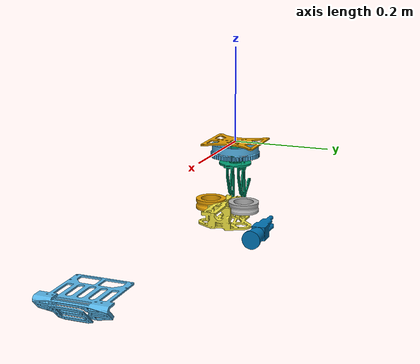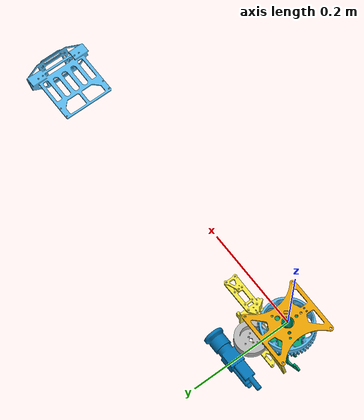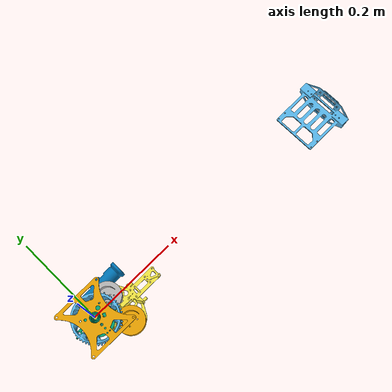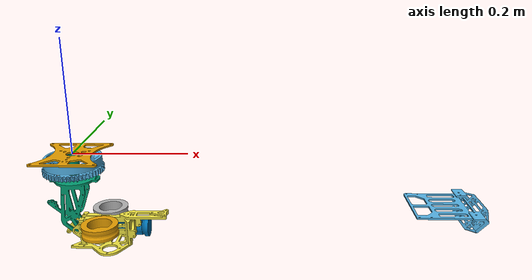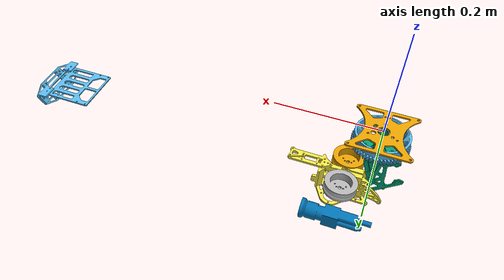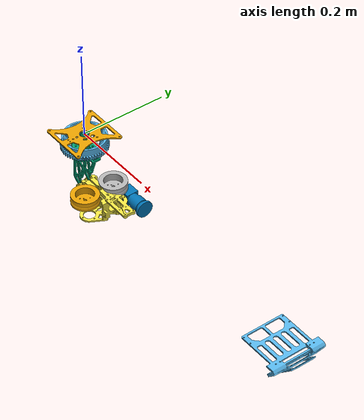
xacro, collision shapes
<?xml version="1.0"?>
<robot xmlns:xacro="http://www.ros.org/wiki/xacro" name="drone">

    <xacro:arg name="load_chassis" default="true"/>
    <xacro:arg name="load_gimbal" default="true"/>
    <xacro:arg name="load_shooter" default="true"/>
    <xacro:arg name="camera_link" default="vision_camera_link"/>
    <xacro:arg name="camera_optical_frame" default="camera_optical_frame"/>
    <xacro:arg name="use_simulation" default="true"/>

    <xacro:if value="$(arg load_chassis)">
        <xacro:include filename="$(find rm2_description)/urdf/drone/chassis.urdf.xacro"/>
        <xacro:include filename="$(find rm2_description)/urdf/drone/camera.urdf.xacro"/>

        <xacro:if value="$(arg load_gimbal)">
            <xacro:include filename="$(find rm2_description)/urdf/drone/gimbal.urdf.xacro"/>
            <xacro:include filename="$(find rm2_description)/urdf/drone/gimbal.transmission.urdf.xacro"/>
            <xacro:include filename="$(find rm2_description)/urdf/common/camera.urdf.xacro"/>
            <xacro:include filename="$(find rm2_description)/urdf/common/imu.urdf.xacro"/>
            <xacro:camera_sensor xyz="0.048161 0.074606 -0.039265" rpy="0 0 0" frame_id="$(arg camera_link)"
                                 parent="pitch"
                                 camera_type="hk_camera"
                                 camera_sim="$(arg use_simulation)"/>
            <xacro:camera_optical_frame xyz="0.048161 0.074606 -0.039265"
                                        rpy="1.6125345 0.00 1.5936112"
                                        frame_id="$(arg camera_optical_frame)"
                                        parent="pitch"
                                        camera_sim="false"/>
            <xacro:IMU connected_to="pitch" imu_name="gimbal_imu" xyz="0.05822 0.0 -0.042111" rpy="${pi} 0 ${pi/2}"/>
            <xacro:if value="$(arg load_shooter)">
                <xacro:include filename="$(find rm2_description)/urdf/drone/shooter.urdf.xacro"/>
                <xacro:include filename="$(find rm2_description)/urdf/drone/shooter.transmission.urdf.xacro"/>
            </xacro:if>
        </xacro:if>
    </xacro:if>

    <xacro:if value="$(arg use_simulation)">
        <gazebo>
            <plugin name="rm_ros_control" filename="librm_robot_hw_sim.so">
                <robotNamespace>/</robotNamespace>
                <robotSimType>rm_gazebo/RmRobotHWSim</robotSimType>
            </plugin>
        </gazebo>
    </xacro:if>

</robot>

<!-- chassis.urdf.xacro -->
<robot>

    <!-- https://upload.wikimedia.org/wikipedia/commons/5/52/Wheelbase_and_Track.png -->

    <link name="base_link">
        <inertial>
            <mass value="7.933506"/>
            <origin xyz="-0.004794 0.00172 0.037912"/>
            <inertia ixx="1.054" ixy="-1.98e-04" ixz="3.722e-03" iyy="1.041"
                     iyz="1.046e-04" izz="1.9"/>
        </inertial>
        <visual>
            <origin xyz="0 0 0" rpy="0 0 0"/>
            <geometry>
                <mesh filename="package://rm2_description/meshes/drone/base_link.stl" scale="1 1 1"/>
            </geometry>
        </visual>
        <collision>
            <origin xyz="0 0 0" rpy="0 0 0"/>
            <geometry>
                <mesh filename="package://rm2_description/meshes/drone/base_link.stl" scale="1 1 1"/>
            </geometry>
        </collision>
    </link>

</robot>

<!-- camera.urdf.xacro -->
<robot>

    <!-- https://upload.wikimedia.org/wikipedia/commons/5/52/Wheelbase_and_Track.png -->

    <link name="locate_camera">
        <inertial>
            <mass value="0.054995"/>
            <origin xyz="0.00625 0.0 0.0"/>
            <inertia ixx="5.4086249e-5" ixy="0.0" ixz="0.0" iyy="5.42716280e-5"
                     iyz="0.0" izz="5.5432970e-6"/>
        </inertial>
        <visual>
            <origin xyz="0 0 0" rpy="0 0 0"/>
            <geometry>
                <mesh filename="package://rm2_description/meshes/drone/camera.stl" scale="0.001 0.001 0.001"/>
            </geometry>
        </visual>
        <collision>
            <origin xyz="0 0 0" rpy="0 0 0"/>
            <geometry>
                <mesh filename="package://rm2_description/meshes/drone/camera.stl" scale="0.001 0.001 0.001"/>
            </geometry>
        </collision>
    </link>

    <joint name="locate_camera_joint" type="fixed">
        <origin xyz="0.45 0 -0.0175" rpy="0 0 0"/>
        <parent link="base_link"/>
        <child link="locate_camera"/>
    </joint>

</robot>

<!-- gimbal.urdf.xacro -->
<robot xmlns:xacro="http://www.ros.org/wiki/xacro">

    <xacro:property name="threshold" value="0.1"/>
    <xacro:property name="pitch_lower_limit" value="-0.467"/>
    <xacro:property name="pitch_upper_limit" value="0.307"/>
    <xacro:property name="yaw_lower_limit" value="-1.052"/>
    <xacro:property name="yaw_upper_limit" value="1.055"/>

    <link name="yaw">
        <inertial>
            <mass value="0.948175"/>
            <origin xyz="-0.025514 -0.005502 -0.047684"/>
            <inertia ixx="1.020e-03" ixy="-1.701e-04" ixz="-5.731e-04" iyy="1.708e-03"
                     iyz="-1.106e-04" izz="1.251e-03"/>
        </inertial>
        <visual>
            <origin xyz="0 0 0" rpy="0 0 0"/>
            <geometry>
                <mesh filename="package://rm2_description/meshes/drone/yaw.stl" scale="1 1 1"/>
            </geometry>
        </visual>
        <collision>
            <origin xyz="0 0 0" rpy="0 0 0"/>
            <geometry>
                <mesh filename="package://rm2_description/meshes/drone/yaw.stl" scale="1 1 1"/>
            </geometry>
        </collision>
    </link>

    <joint name="yaw_joint" type="revolute">
        <origin xyz="0 0 -0.003"
                rpy="0 0 0"/>
        <dynamics damping="0.0" friction="0.1"/>
        <limit effort="1.2" velocity="31" lower="${yaw_lower_limit}" upper="${yaw_upper_limit}"/>
        <safety_controller k_position="100" k_velocity="0.1"
                           soft_lower_limit="${yaw_lower_limit+threshold}"
                           soft_upper_limit="${yaw_upper_limit-threshold}"/>
        <parent link="base_link"/>
        <child link="yaw"/>
        <axis xyz="0 0 1"/>
    </joint>

    <link name="pitch">
        <inertial>
            <mass value="1.390125"/>
            <origin xyz="0.060522 0.001897 -0.014107"/>
            <inertia ixx="3.385e-03" ixy="3.000e-04" ixz="-2.002e-03" iyy="8.459e-03"
                     iyz="7.6495077e-05" izz="6.754e-03"/>
        </inertial>
        <visual>
            <origin xyz="0 0 0" rpy="0 0 0"/>
            <geometry>
                <mesh filename="package://rm2_description/meshes/drone/pitch.stl" scale="1 1 1"/>
            </geometry>
        </visual>
        <collision>
            <origin xyz="0 0 0" rpy="0 0 0"/>
            <geometry>
                <mesh filename="package://rm2_description/meshes/drone/pitch.stl" scale="1 1 1"/>
            </geometry>
        </collision>
    </link>

    <joint name="pitch_joint" type="revolute">
        <origin xyz="0 0 -0.134" rpy="0 0 0"/>
        <dynamics damping="0.0" friction="0.1"/>
        <limit effort="3.0" velocity="86" lower="${pitch_lower_limit}" upper="${pitch_upper_limit}"/>
        <safety_controller k_position="100" k_velocity="0.1"
                           soft_lower_limit="${pitch_lower_limit+threshold}"
                           soft_upper_limit="${pitch_upper_limit-threshold}"/>
        <parent link="yaw"/>
        <child link="pitch"/>
        <axis xyz="0 1 0 "/>
    </joint>

</robot>

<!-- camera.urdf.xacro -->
<robot xmlns:xacro="http://www.ros.org/wiki/xacro">

    <xacro:macro name="camera_sensor" params="xyz rpy frame_id parent camera_type camera_sim">
        <joint name="${frame_id}_joint" type="fixed">
            <axis xyz="0 1 0"/>
            <origin xyz="${xyz}" rpy="${rpy}"/>
            <parent link="${parent}"/>
            <child link="${frame_id}"/>
        </joint>

        <link name="${frame_id}">
            <visual>
                <origin xyz="0 0 0" rpy="0 0 0"/>
                <geometry>
                    <mesh filename="package://rm2_description/meshes/common/${camera_type}.stl" scale="1 1 1"/>
                </geometry>
            </visual>
            <inertial>
                <mass value="0.17671"/>
                <origin xyz="0.022 0.0 0.0"/>
                <inertia ixx="2.129e-5" ixy="7.329e-8" ixz="-1.11e-7" iyy="2.198e-4" iyz="-8.04e-7" izz="2.197e-4"/>
            </inertial>
            <collision>
                <origin xyz="0 0 0" rpy="0 0 0"/>
                <geometry>
                    <mesh filename="package://rm2_description/meshes/common/${camera_type}.stl" scale="1 1 1"/>
                </geometry>
            </collision>
        </link>
    </xacro:macro>

    <xacro:macro name="camera_optical_frame" params="xyz rpy frame_id parent camera_sim">
        <joint name="${frame_id}_joint" type="fixed">
            <origin xyz="${xyz}" rpy="${rpy}"/>
            <parent link="${parent}"/>
            <child link="${frame_id}"/>
        </joint>
        <link name="${frame_id}">
            <inertial>
                <mass value="0.001"/>
                <origin xyz="0.0 0.0 0.0"/>
                <inertia ixx="2.129e-9" ixy="7.329e-9" ixz="-1.11e-9" iyy="2.198e-9" iyz="-8.04e-9" izz="2.197e-9"/>
            </inertial>
        </link>

        <xacro:if value="${camera_sim}">
            <gazebo reference="camera_link">
                <sensor type="camera" name="camera">
                    <update_rate>100.0</update_rate>
                    <camera name="head">
                        <horizontal_fov>1.3962634</horizontal_fov>
                        <image>
                            <width>1920</width>
                            <height>1080</height>
                            <format>R8G8B8</format>
                        </image>
                        <clip>
                            <near>0.05</near>
                            <far>5</far>
                        </clip>
                        <noise>
                            <type>gaussian</type>
                            <mean>0.0</mean>
                            <stddev>0.007</stddev>
                        </noise>
                    </camera>
                    <plugin name="camera_controller" filename="libgazebo_ros_camera.so">
                        <alwaysOn>true</alwaysOn>
                        <updateRate>0.0</updateRate>
                        <cameraName>galaxy_camera</cameraName>
                        <imageTopicName>image_raw</imageTopicName>
                        <cameraInfoTopicName>camera_info</cameraInfoTopicName>
                        <frameName>camera_optical_frame</frameName>
                        <hackBaseline>0.07</hackBaseline>
                        <distortionK1>0.0</distortionK1>
                        <distortionK2>0.0</distortionK2>
                        <distortionK3>0.0</distortionK3>
                        <distortionT1>0.0</distortionT1>
                        <distortionT2>0.0</distortionT2>
                    </plugin>
                </sensor>
            </gazebo>
        </xacro:if>

    </xacro:macro>

</robot>

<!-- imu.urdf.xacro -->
<robot xmlns:xacro="http://www.ros.org/wiki/xacro" name="imu">
    <xacro:macro name="IMU" params="connected_to imu_name xyz:='0 0 0' rpy:='0 0 0' ">
        <!-- Imu is fixed to the base link -->
        <joint name="${imu_name}_joint" type="fixed">
            <origin xyz="${xyz}" rpy="${rpy}"/>
            <parent link="${connected_to}"/>
            <child link="${imu_name}"/>
        </joint>
        <!-- Imu link -->
        <link name="${imu_name}">
            <inertial>
                <mass value="0.01"/>
                <origin rpy="0 0 0" xyz="0 0 0"/>
                <inertia ixx="0.000001" ixy="0" ixz="0" iyy="0.000001" iyz="0" izz="0.000001"/>
            </inertial>
            <visual>
                <origin rpy="0 0 0" xyz="0 0 0"/>
                <geometry>
                    <mesh filename="package://rm2_description/meshes/common/imu.stl" scale="1 1 1"/>
                </geometry>
            </visual>
            <material name="orange">
                <color rgba="255 108 10 255"/>
            </material>
        </link>
        <gazebo reference="${imu_name}">
            <material>Gazebo/Orange</material>
        </gazebo>
        <gazebo reference="${imu_name}_joint">
            <disableFixedJointLumping>true</disableFixedJointLumping>
        </gazebo>
    </xacro:macro>
</robot>

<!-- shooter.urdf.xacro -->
<robot xmlns:xacro="http://www.ros.org/wiki/xacro">

    <xacro:include filename="$(find rm2_description)/urdf/common/friction.urdf.xacro"/>

    <xacro:property name="wheel_offset_x" value="0.047"/>
    <xacro:property name="wheel_offset_y" value="0.0365"/>
    <xacro:property name="wheel_offset_z" value="0.0004"/>

    <xacro:friction_wheel prefixs="left" connected_to="pitch"
                          wheel_x_offset="${wheel_offset_x}" wheel_y_offset="${wheel_offset_y}"
                          wheel_z_offset="${wheel_offset_z}"/>

    <xacro:friction_wheel prefixs="right" connected_to="pitch"
                          wheel_x_offset="${wheel_offset_x}" wheel_y_offset="${-wheel_offset_y}"
                          wheel_z_offset="${wheel_offset_z}"/>

    <link name="trigger">
        <inertial>
            <mass value="0.126797"/>
            <origin xyz="-0.00012 5.63e-8 0.034133"/>
            <inertia ixx="7.5663308e-05" ixy="2.132e-09" ixz="-2.32166e-07" iyy="7.4210991e-05"
                     iyz="-0.069e-09" izz="1.199e-04"/>
        </inertial>
        <visual>
            <origin xyz="0 0 0" rpy="0 0 0"/>
            <geometry>
                <mesh filename="package://rm2_description/meshes/drone/trigger.stl" scale="0.001 0.001 0.001"/>
            </geometry>
        </visual>
        <collision>
            <origin xyz="0 0 0" rpy="0 0 0"/>
            <geometry>
                <mesh filename="package://rm2_description/meshes/drone/trigger.stl" scale="0.001 0.001 0.001"/>
            </geometry>
        </collision>
    </link>

    <joint name="trigger_joint" type="revolute">
        <origin xyz="0 0 -0.045" rpy="0 0 0"/>
        <dynamics damping="0.0" friction="0.01"/>
        <limit effort="3.0" velocity="43.54" lower="-1e16" upper="1e16"/>
        <parent link="base_link"/>
        <child link="trigger"/>
        <axis xyz="0 0 -1"/>
    </joint>

</robot>

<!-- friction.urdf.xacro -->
<robot xmlns:xacro="http://www.ros.org/wiki/xacro">

    <xacro:macro name="friction_wheel" params="prefixs:='' connected_to:=''  wheel_x_offset:='0' wheel_y_offset:='0' wheel_z_offset:='0' wheel_r_offset:='0'">

        <link name="${prefixs}_friction_wheel">
            <inertial>
                <mass value="0.15269"/>
                <origin xyz="0 0 -0.004"/>
                <inertia ixx="4.776e-5" ixy="2.192e-7" ixz="-1.28e-7" iyy="4.759e-5"
                         iyz="-1.683e-7" izz="6.148e-5"/>
            </inertial>
            <visual>
                <origin xyz="0 0 0" rpy="0 0 0"/>
                <geometry>
                    <mesh filename="package://rm2_description/meshes/common/friction.stl" scale="1 1 1"/>
                </geometry>
            </visual>
            <collision>
                <origin xyz="0 0 0" rpy="0 0 0"/>
                <geometry>
                    <mesh filename="package://rm2_description/meshes/common/friction.stl" scale="1 1 1"/>
                </geometry>
            </collision>
        </link>

        <joint name="${prefixs}_friction_wheel_joint"  type="continuous">
            <origin xyz="${wheel_x_offset} ${wheel_y_offset} ${wheel_z_offset}" rpy="${wheel_r_offset} 0 0"/>"
            <dynamics damping="0.0" friction="0.01"/>
            <limit upper="1e16" lower="-1e16" effort="0.26" velocity="942.66"/>
            <parent link="${connected_to}" />
            <child link="${prefixs}_friction_wheel" />
            <axis xyz="0 0 1" />

        </joint>

    </xacro:macro>
</robot>
